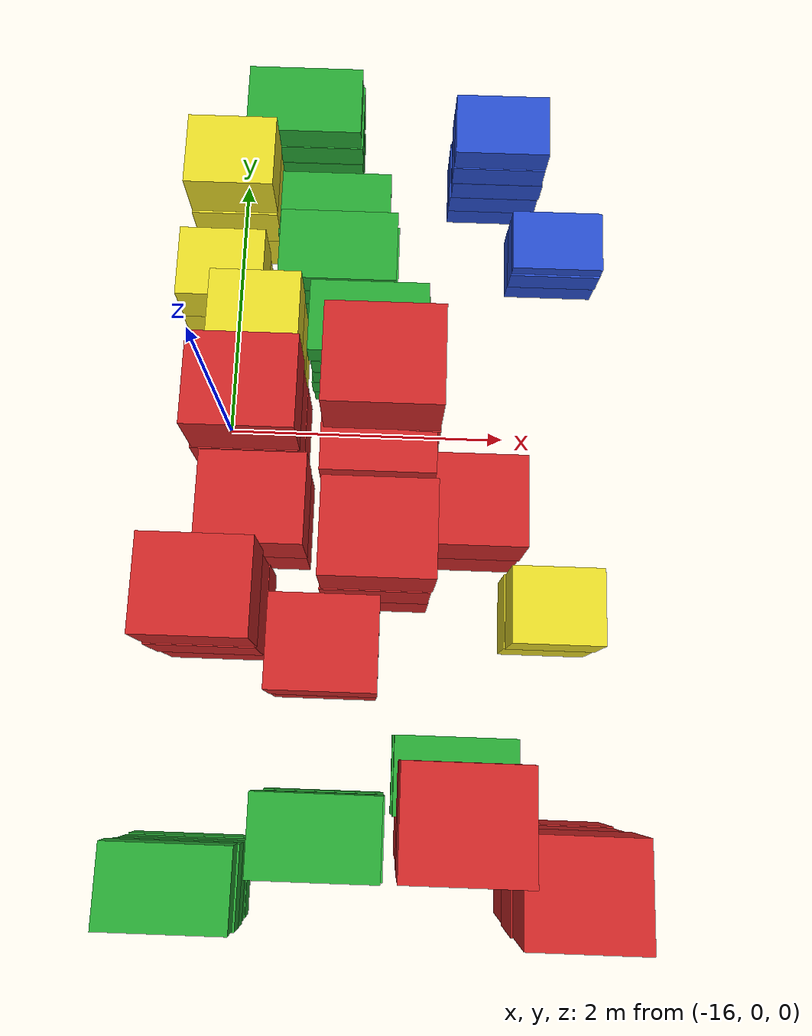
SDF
<sdf version="1.6">
 <world name="default">
  <include><uri>model://sun</uri></include>
  <model name="baggage_D_x5">
   <model name="baggage_D_0">
    <static>1</static>
    <link name="link">
     <collision name="collision"><geometry><box><size>0.8 0.5 0.2</size></box></geometry></collision>
     <visual name="visual">
      <geometry><box><size>0.8 0.5 0.2</size></box></geometry>
      <material>
       <script><uri>file://media/materials/scripts/gazebo.material</uri><name>Gazebo/Green</name></script>
      </material>
     </visual>
    </link>
    <pose>0 0 0.1 0 -0 0</pose>
   </model>
   <model name="baggage_D_1">
    <static>1</static>
    <link name="link">
     <collision name="collision"><geometry><box><size>0.8 0.5 0.2</size></box></geometry></collision>
     <visual name="visual">
      <geometry><box><size>0.8 0.5 0.2</size></box></geometry>
      <material>
       <script><uri>file://media/materials/scripts/gazebo.material</uri><name>Gazebo/Green</name></script>
      </material>
     </visual>
    </link>
    <pose>-0.0065 -0.0092 0.3 0 -0 0</pose>
   </model>
   <model name="baggage_D_2">
    <static>1</static>
    <link name="link">
     <collision name="collision"><geometry><box><size>0.8 0.5 0.2</size></box></geometry></collision>
     <visual name="visual">
      <geometry><box><size>0.8 0.5 0.2</size></box></geometry>
      <material>
       <script><uri>file://media/materials/scripts/gazebo.material</uri><name>Gazebo/Green</name></script>
      </material>
     </visual>
    </link>
    <pose>0.005 -0.0052 0.5 0 -0 0</pose>
   </model>
   <model name="baggage_D_3">
    <static>1</static>
    <link name="link">
     <collision name="collision"><geometry><box><size>0.8 0.5 0.2</size></box></geometry></collision>
     <visual name="visual">
      <geometry><box><size>0.8 0.5 0.2</size></box></geometry>
      <material>
       <script><uri>file://media/materials/scripts/gazebo.material</uri><name>Gazebo/Green</name></script>
      </material>
     </visual>
    </link>
    <pose>0.0074 0.0002 0.7 0 -0 0</pose>
   </model>
   <model name="baggage_D_4">
    <static>1</static>
    <link name="link">
     <collision name="collision"><geometry><box><size>0.8 0.5 0.2</size></box></geometry></collision>
     <visual name="visual">
      <geometry><box><size>0.8 0.5 0.2</size></box></geometry>
      <material>
       <script><uri>file://media/materials/scripts/gazebo.material</uri><name>Gazebo/Green</name></script>
      </material>
     </visual>
    </link>
    <pose>-0.006 0.0081 0.9 0 -0 0</pose>
   </model>
   <pose>-16.0603 -3.09138 0 0 -0 0</pose>
  </model>
  <model name="baggage_D_x5_0">
   <model name="baggage_D_0">
    <static>1</static>
    <link name="link">
     <collision name="collision"><geometry><box><size>0.8 0.5 0.2</size></box></geometry></collision>
     <visual name="visual">
      <geometry><box><size>0.8 0.5 0.2</size></box></geometry>
      <material>
       <script><uri>file://media/materials/scripts/gazebo.material</uri><name>Gazebo/Green</name></script>
      </material>
     </visual>
    </link>
    <pose>0 0 0.1 0 -0 0</pose>
   </model>
   <model name="baggage_D_1">
    <static>1</static>
    <link name="link">
     <collision name="collision"><geometry><box><size>0.8 0.5 0.2</size></box></geometry></collision>
     <visual name="visual">
      <geometry><box><size>0.8 0.5 0.2</size></box></geometry>
      <material>
       <script><uri>file://media/materials/scripts/gazebo.material</uri><name>Gazebo/Green</name></script>
      </material>
     </visual>
    </link>
    <pose>-0.0065 -0.0092 0.3 0 -0 0</pose>
   </model>
   <model name="baggage_D_2">
    <static>1</static>
    <link name="link">
     <collision name="collision"><geometry><box><size>0.8 0.5 0.2</size></box></geometry></collision>
     <visual name="visual">
      <geometry><box><size>0.8 0.5 0.2</size></box></geometry>
      <material>
       <script><uri>file://media/materials/scripts/gazebo.material</uri><name>Gazebo/Green</name></script>
      </material>
     </visual>
    </link>
    <pose>0.005 -0.0052 0.5 0 -0 0</pose>
   </model>
   <model name="baggage_D_3">
    <static>1</static>
    <link name="link">
     <collision name="collision"><geometry><box><size>0.8 0.5 0.2</size></box></geometry></collision>
     <visual name="visual">
      <geometry><box><size>0.8 0.5 0.2</size></box></geometry>
      <material>
       <script><uri>file://media/materials/scripts/gazebo.material</uri><name>Gazebo/Green</name></script>
      </material>
     </visual>
    </link>
    <pose>0.0074 0.0002 0.7 0 -0 0</pose>
   </model>
   <model name="baggage_D_4">
    <static>1</static>
    <link name="link">
     <collision name="collision"><geometry><box><size>0.8 0.5 0.2</size></box></geometry></collision>
     <visual name="visual">
      <geometry><box><size>0.8 0.5 0.2</size></box></geometry>
      <material>
       <script><uri>file://media/materials/scripts/gazebo.material</uri><name>Gazebo/Green</name></script>
      </material>
     </visual>
    </link>
    <pose>-0.006 0.0081 0.9 0 -0 0</pose>
   </model>
   <pose>-15.1916 -2.77971 0 0 -0 0</pose>
  </model>
  <model name="baggage_D_x3">
   <model name="baggage_D_0">
    <static>1</static>
    <link name="link">
     <collision name="collision"><geometry><box><size>0.8 0.5 0.2</size></box></geometry></collision>
     <visual name="visual">
      <geometry><box><size>0.8 0.5 0.2</size></box></geometry>
      <material>
       <script><uri>file://media/materials/scripts/gazebo.material</uri><name>Gazebo/Green</name></script>
      </material>
     </visual>
    </link>
    <pose>0 0 0.1 0 -0 0</pose>
   </model>
   <model name="baggage_D_1">
    <static>1</static>
    <link name="link">
     <collision name="collision"><geometry><box><size>0.8 0.5 0.2</size></box></geometry></collision>
     <visual name="visual">
      <geometry><box><size>0.8 0.5 0.2</size></box></geometry>
      <material>
       <script><uri>file://media/materials/scripts/gazebo.material</uri><name>Gazebo/Green</name></script>
      </material>
     </visual>
    </link>
    <pose>-0.0056 0.0083 0.3 0 -0 0</pose>
   </model>
   <model name="baggage_D_2">
    <static>1</static>
    <link name="link">
     <collision name="collision"><geometry><box><size>0.8 0.5 0.2</size></box></geometry></collision>
     <visual name="visual">
      <geometry><box><size>0.8 0.5 0.2</size></box></geometry>
      <material>
       <script><uri>file://media/materials/scripts/gazebo.material</uri><name>Gazebo/Green</name></script>
      </material>
     </visual>
    </link>
    <pose>0.0053 0.0057 0.5 0 -0 0</pose>
   </model>
   <pose>-14.3395 -2.41254 0 0 -0 0</pose>
  </model>
  <model name="baggage_A_x4">
   <model name="baggage_A_0">
    <static>1</static>
    <link name="link">
     <collision name="collision"><geometry><box><size>0.7 0.6 0.5</size></box></geometry></collision>
     <visual name="visual">
      <geometry><box><size>0.7 0.6 0.5</size></box></geometry>
      <material>
       <script><uri>file://media/materials/scripts/gazebo.material</uri><name>Gazebo/Red</name></script>
      </material>
     </visual>
    </link>
    <pose>0 0 0.25 0 -0 0</pose>
   </model>
   <model name="baggage_A_1">
    <static>1</static>
    <link name="link">
     <collision name="collision"><geometry><box><size>0.7 0.6 0.5</size></box></geometry></collision>
     <visual name="visual">
      <geometry><box><size>0.7 0.6 0.5</size></box></geometry>
      <material>
       <script><uri>file://media/materials/scripts/gazebo.material</uri><name>Gazebo/Red</name></script>
      </material>
     </visual>
    </link>
    <pose>0.0053 0.0033 0.75 0 -0 0</pose>
   </model>
   <model name="baggage_A_2">
    <static>1</static>
    <link name="link">
     <collision name="collision"><geometry><box><size>0.7 0.6 0.5</size></box></geometry></collision>
     <visual name="visual">
      <geometry><box><size>0.7 0.6 0.5</size></box></geometry>
      <material>
       <script><uri>file://media/materials/scripts/gazebo.material</uri><name>Gazebo/Red</name></script>
      </material>
     </visual>
    </link>
    <pose>-0.0056 -0.0003 1.25 0 -0 0</pose>
   </model>
   <model name="baggage_A_3">
    <static>1</static>
    <link name="link">
     <collision name="collision"><geometry><box><size>0.7 0.6 0.5</size></box></geometry></collision>
     <visual name="visual">
      <geometry><box><size>0.7 0.6 0.5</size></box></geometry>
      <material>
       <script><uri>file://media/materials/scripts/gazebo.material</uri><name>Gazebo/Red</name></script>
      </material>
     </visual>
    </link>
    <pose>-0.0098 0.0065 1.75 0 -0 0</pose>
   </model>
   <pose>-14.3613 -2.61485 0 0 -0 0</pose>
  </model>
  <model name="baggage_A_x3">
   <model name="baggage_A_0">
    <static>1</static>
    <link name="link">
     <collision name="collision"><geometry><box><size>0.7 0.6 0.5</size></box></geometry></collision>
     <visual name="visual">
      <geometry><box><size>0.7 0.6 0.5</size></box></geometry>
      <material>
       <script><uri>file://media/materials/scripts/gazebo.material</uri><name>Gazebo/Red</name></script>
      </material>
     </visual>
    </link>
    <pose>0 0 0.25 0 -0 0</pose>
   </model>
   <model name="baggage_A_1">
    <static>1</static>
    <link name="link">
     <collision name="collision"><geometry><box><size>0.7 0.6 0.5</size></box></geometry></collision>
     <visual name="visual">
      <geometry><box><size>0.7 0.6 0.5</size></box></geometry>
      <material>
       <script><uri>file://media/materials/scripts/gazebo.material</uri><name>Gazebo/Red</name></script>
      </material>
     </visual>
    </link>
    <pose>-0.006 -0.0077 0.75 0 -0 0</pose>
   </model>
   <model name="baggage_A_2">
    <static>1</static>
    <link name="link">
     <collision name="collision"><geometry><box><size>0.7 0.6 0.5</size></box></geometry></collision>
     <visual name="visual">
      <geometry><box><size>0.7 0.6 0.5</size></box></geometry>
      <material>
       <script><uri>file://media/materials/scripts/gazebo.material</uri><name>Gazebo/Red</name></script>
      </material>
     </visual>
    </link>
    <pose>0.0045 0.0005 1.25 0 -0 0</pose>
   </model>
   <pose>-13.6814 -2.97255 0 0 -0 0</pose>
  </model>
  <model name="baggage_A_x3_1">
   <model name="baggage_A_0">
    <static>1</static>
    <link name="link">
     <collision name="collision"><geometry><box><size>0.7 0.6 0.5</size></box></geometry></collision>
     <visual name="visual">
      <geometry><box><size>0.7 0.6 0.5</size></box></geometry>
      <material>
       <script><uri>file://media/materials/scripts/gazebo.material</uri><name>Gazebo/Red</name></script>
      </material>
     </visual>
    </link>
    <pose>0 0 0.25 0 -0 0</pose>
   </model>
   <model name="baggage_A_1">
    <static>1</static>
    <link name="link">
     <collision name="collision"><geometry><box><size>0.7 0.6 0.5</size></box></geometry></collision>
     <visual name="visual">
      <geometry><box><size>0.7 0.6 0.5</size></box></geometry>
      <material>
       <script><uri>file://media/materials/scripts/gazebo.material</uri><name>Gazebo/Red</name></script>
      </material>
     </visual>
    </link>
    <pose>-0.006 -0.0077 0.75 0 -0 0</pose>
   </model>
   <model name="baggage_A_2">
    <static>1</static>
    <link name="link">
     <collision name="collision"><geometry><box><size>0.7 0.6 0.5</size></box></geometry></collision>
     <visual name="visual">
      <geometry><box><size>0.7 0.6 0.5</size></box></geometry>
      <material>
       <script><uri>file://media/materials/scripts/gazebo.material</uri><name>Gazebo/Red</name></script>
      </material>
     </visual>
    </link>
    <pose>0.0045 0.0005 1.25 0 -0 0</pose>
   </model>
   <pose>-15.9557 -1.37192 0 0 -0 0</pose>
  </model>
  <model name="baggage_A_x2">
   <model name="baggage_A_0">
    <static>1</static>
    <link name="link">
     <collision name="collision"><geometry><box><size>0.7 0.6 0.5</size></box></geometry></collision>
     <visual name="visual">
      <geometry><box><size>0.7 0.6 0.5</size></box></geometry>
      <material>
       <script><uri>file://media/materials/scripts/gazebo.material</uri><name>Gazebo/Red</name></script>
      </material>
     </visual>
    </link>
    <pose>0 0 0.25 0 -0 0</pose>
   </model>
   <model name="baggage_A_1">
    <static>1</static>
    <link name="link">
     <collision name="collision"><geometry><box><size>0.7 0.6 0.5</size></box></geometry></collision>
     <visual name="visual">
      <geometry><box><size>0.7 0.6 0.5</size></box></geometry>
      <material>
       <script><uri>file://media/materials/scripts/gazebo.material</uri><name>Gazebo/Red</name></script>
      </material>
     </visual>
    </link>
    <pose>0.0063 -0.0062 0.75 0 -0 0</pose>
   </model>
   <pose>-15.7141 -0.71732 0 0 -0 0</pose>
  </model>
  <model name="baggage_A_x3_2">
   <model name="baggage_A_0">
    <static>1</static>
    <link name="link">
     <collision name="collision"><geometry><box><size>0.7 0.6 0.5</size></box></geometry></collision>
     <visual name="visual">
      <geometry><box><size>0.7 0.6 0.5</size></box></geometry>
      <material>
       <script><uri>file://media/materials/scripts/gazebo.material</uri><name>Gazebo/Red</name></script>
      </material>
     </visual>
    </link>
    <pose>0 0 0.25 0 -0 0</pose>
   </model>
   <model name="baggage_A_1">
    <static>1</static>
    <link name="link">
     <collision name="collision"><geometry><box><size>0.7 0.6 0.5</size></box></geometry></collision>
     <visual name="visual">
      <geometry><box><size>0.7 0.6 0.5</size></box></geometry>
      <material>
       <script><uri>file://media/materials/scripts/gazebo.material</uri><name>Gazebo/Red</name></script>
      </material>
     </visual>
    </link>
    <pose>-0.006 -0.0077 0.75 0 -0 0</pose>
   </model>
   <model name="baggage_A_2">
    <static>1</static>
    <link name="link">
     <collision name="collision"><geometry><box><size>0.7 0.6 0.5</size></box></geometry></collision>
     <visual name="visual">
      <geometry><box><size>0.7 0.6 0.5</size></box></geometry>
      <material>
       <script><uri>file://media/materials/scripts/gazebo.material</uri><name>Gazebo/Red</name></script>
      </material>
     </visual>
    </link>
    <pose>0.0045 0.0005 1.25 0 -0 0</pose>
   </model>
   <pose>-15.7621 -0.111141 0 0 -0 0</pose>
  </model>
  <model name="baggage_A_x3_3">
   <model name="baggage_A_0">
    <static>1</static>
    <link name="link">
     <collision name="collision"><geometry><box><size>0.7 0.6 0.5</size></box></geometry></collision>
     <visual name="visual">
      <geometry><box><size>0.7 0.6 0.5</size></box></geometry>
      <material>
       <script><uri>file://media/materials/scripts/gazebo.material</uri><name>Gazebo/Red</name></script>
      </material>
     </visual>
    </link>
    <pose>0 0 0.25 0 -0 0</pose>
   </model>
   <model name="baggage_A_1">
    <static>1</static>
    <link name="link">
     <collision name="collision"><geometry><box><size>0.7 0.6 0.5</size></box></geometry></collision>
     <visual name="visual">
      <geometry><box><size>0.7 0.6 0.5</size></box></geometry>
      <material>
       <script><uri>file://media/materials/scripts/gazebo.material</uri><name>Gazebo/Red</name></script>
      </material>
     </visual>
    </link>
    <pose>-0.006 -0.0077 0.75 0 -0 0</pose>
   </model>
   <model name="baggage_A_2">
    <static>1</static>
    <link name="link">
     <collision name="collision"><geometry><box><size>0.7 0.6 0.5</size></box></geometry></collision>
     <visual name="visual">
      <geometry><box><size>0.7 0.6 0.5</size></box></geometry>
      <material>
       <script><uri>file://media/materials/scripts/gazebo.material</uri><name>Gazebo/Red</name></script>
      </material>
     </visual>
    </link>
    <pose>0.0045 0.0005 1.25 0 -0 0</pose>
   </model>
   <pose>-14.902 -0.36223 0 0 -0 0</pose>
  </model>
  <model name="baggage_A_x3_4">
   <model name="baggage_A_0">
    <static>1</static>
    <link name="link">
     <collision name="collision"><geometry><box><size>0.7 0.6 0.5</size></box></geometry></collision>
     <visual name="visual">
      <geometry><box><size>0.7 0.6 0.5</size></box></geometry>
      <material>
       <script><uri>file://media/materials/scripts/gazebo.material</uri><name>Gazebo/Red</name></script>
      </material>
     </visual>
    </link>
    <pose>0 0 0.25 0 -0 0</pose>
   </model>
   <model name="baggage_A_1">
    <static>1</static>
    <link name="link">
     <collision name="collision"><geometry><box><size>0.7 0.6 0.5</size></box></geometry></collision>
     <visual name="visual">
      <geometry><box><size>0.7 0.6 0.5</size></box></geometry>
      <material>
       <script><uri>file://media/materials/scripts/gazebo.material</uri><name>Gazebo/Red</name></script>
      </material>
     </visual>
    </link>
    <pose>-0.006 -0.0077 0.75 0 -0 0</pose>
   </model>
   <model name="baggage_A_2">
    <static>1</static>
    <link name="link">
     <collision name="collision"><geometry><box><size>0.7 0.6 0.5</size></box></geometry></collision>
     <visual name="visual">
      <geometry><box><size>0.7 0.6 0.5</size></box></geometry>
      <material>
       <script><uri>file://media/materials/scripts/gazebo.material</uri><name>Gazebo/Red</name></script>
      </material>
     </visual>
    </link>
    <pose>0.0045 0.0005 1.25 0 -0 0</pose>
   </model>
   <pose>-14.8854 -0.995082 0 0 -0 0</pose>
  </model>
  <model name="baggage_A_x2_0">
   <model name="baggage_A_0">
    <static>1</static>
    <link name="link">
     <collision name="collision"><geometry><box><size>0.7 0.6 0.5</size></box></geometry></collision>
     <visual name="visual">
      <geometry><box><size>0.7 0.6 0.5</size></box></geometry>
      <material>
       <script><uri>file://media/materials/scripts/gazebo.material</uri><name>Gazebo/Red</name></script>
      </material>
     </visual>
    </link>
    <pose>0 0 0.25 0 -0 0</pose>
   </model>
   <model name="baggage_A_1">
    <static>1</static>
    <link name="link">
     <collision name="collision"><geometry><box><size>0.7 0.6 0.5</size></box></geometry></collision>
     <visual name="visual">
      <geometry><box><size>0.7 0.6 0.5</size></box></geometry>
      <material>
       <script><uri>file://media/materials/scripts/gazebo.material</uri><name>Gazebo/Red</name></script>
      </material>
     </visual>
    </link>
    <pose>0.0063 -0.0062 0.75 0 -0 0</pose>
   </model>
   <pose>-15.2121 -1.62004 0 0 -0 0</pose>
  </model>
  <model name="baggage_A_x4_0">
   <model name="baggage_A_0">
    <static>1</static>
    <link name="link">
     <collision name="collision"><geometry><box><size>0.7 0.6 0.5</size></box></geometry></collision>
     <visual name="visual">
      <geometry><box><size>0.7 0.6 0.5</size></box></geometry>
      <material>
       <script><uri>file://media/materials/scripts/gazebo.material</uri><name>Gazebo/Red</name></script>
      </material>
     </visual>
    </link>
    <pose>0 0 0.25 0 -0 0</pose>
   </model>
   <model name="baggage_A_1">
    <static>1</static>
    <link name="link">
     <collision name="collision"><geometry><box><size>0.7 0.6 0.5</size></box></geometry></collision>
     <visual name="visual">
      <geometry><box><size>0.7 0.6 0.5</size></box></geometry>
      <material>
       <script><uri>file://media/materials/scripts/gazebo.material</uri><name>Gazebo/Red</name></script>
      </material>
     </visual>
    </link>
    <pose>0.0053 0.0033 0.75 0 -0 0</pose>
   </model>
   <model name="baggage_A_2">
    <static>1</static>
    <link name="link">
     <collision name="collision"><geometry><box><size>0.7 0.6 0.5</size></box></geometry></collision>
     <visual name="visual">
      <geometry><box><size>0.7 0.6 0.5</size></box></geometry>
      <material>
       <script><uri>file://media/materials/scripts/gazebo.material</uri><name>Gazebo/Red</name></script>
      </material>
     </visual>
    </link>
    <pose>-0.0056 -0.0003 1.25 0 -0 0</pose>
   </model>
   <model name="baggage_A_3">
    <static>1</static>
    <link name="link">
     <collision name="collision"><geometry><box><size>0.7 0.6 0.5</size></box></geometry></collision>
     <visual name="visual">
      <geometry><box><size>0.7 0.6 0.5</size></box></geometry>
      <material>
       <script><uri>file://media/materials/scripts/gazebo.material</uri><name>Gazebo/Red</name></script>
      </material>
     </visual>
    </link>
    <pose>-0.0098 0.0065 1.75 0 -0 0</pose>
   </model>
   <pose>-14.8718 -0.108549 0 0 -0 0</pose>
  </model>
  <model name="baggage_A_x2_1">
   <model name="baggage_A_0">
    <static>1</static>
    <link name="link">
     <collision name="collision"><geometry><box><size>0.7 0.6 0.5</size></box></geometry></collision>
     <visual name="visual">
      <geometry><box><size>0.7 0.6 0.5</size></box></geometry>
      <material>
       <script><uri>file://media/materials/scripts/gazebo.material</uri><name>Gazebo/Red</name></script>
      </material>
     </visual>
    </link>
    <pose>0 0 0.25 0 -0 0</pose>
   </model>
   <model name="baggage_A_1">
    <static>1</static>
    <link name="link">
     <collision name="collision"><geometry><box><size>0.7 0.6 0.5</size></box></geometry></collision>
     <visual name="visual">
      <geometry><box><size>0.7 0.6 0.5</size></box></geometry>
      <material>
       <script><uri>file://media/materials/scripts/gazebo.material</uri><name>Gazebo/Red</name></script>
      </material>
     </visual>
    </link>
    <pose>0.0063 -0.0062 0.75 0 -0 0</pose>
   </model>
   <pose>-14.2882 -0.683416 0 0 -0 0</pose>
  </model>
  <model name="baggage_C_x2_0">
   <model name="baggage_C_0">
    <static>1</static>
    <link name="link">
     <collision name="collision"><geometry><box><size>0.6 0.5 0.4</size></box></geometry></collision>
     <visual name="visual">
      <geometry><box><size>0.6 0.5 0.4</size></box></geometry>
      <material>
       <script><uri>file://media/materials/scripts/gazebo.material</uri><name>Gazebo/Yellow</name></script>
      </material>
     </visual>
    </link>
    <pose>0 0 0.2 0 -0 0</pose>
   </model>
   <model name="baggage_C_1">
    <static>1</static>
    <link name="link">
     <collision name="collision"><geometry><box><size>0.6 0.5 0.4</size></box></geometry></collision>
     <visual name="visual">
      <geometry><box><size>0.6 0.5 0.4</size></box></geometry>
      <material>
       <script><uri>file://media/materials/scripts/gazebo.material</uri><name>Gazebo/Yellow</name></script>
      </material>
     </visual>
    </link>
    <pose>0.0093 -0.002 0.6 0 -0 0</pose>
   </model>
   <pose>-13.721 -1.31855 0 0 -0 0</pose>
  </model>
  <model name="baggage_C_x3_1">
   <model name="baggage_C_0">
    <static>1</static>
    <link name="link">
     <collision name="collision"><geometry><box><size>0.6 0.5 0.4</size></box></geometry></collision>
     <visual name="visual">
      <geometry><box><size>0.6 0.5 0.4</size></box></geometry>
      <material>
       <script><uri>file://media/materials/scripts/gazebo.material</uri><name>Gazebo/Yellow</name></script>
      </material>
     </visual>
    </link>
    <pose>0 0 0.2 0 -0 0</pose>
   </model>
   <model name="baggage_C_1">
    <static>1</static>
    <link name="link">
     <collision name="collision"><geometry><box><size>0.6 0.5 0.4</size></box></geometry></collision>
     <visual name="visual">
      <geometry><box><size>0.6 0.5 0.4</size></box></geometry>
      <material>
       <script><uri>file://media/materials/scripts/gazebo.material</uri><name>Gazebo/Yellow</name></script>
      </material>
     </visual>
    </link>
    <pose>0.0062 -0.0069 0.6 0 -0 0</pose>
   </model>
   <model name="baggage_C_2">
    <static>1</static>
    <link name="link">
     <collision name="collision"><geometry><box><size>0.6 0.5 0.4</size></box></geometry></collision>
     <visual name="visual">
      <geometry><box><size>0.6 0.5 0.4</size></box></geometry>
      <material>
       <script><uri>file://media/materials/scripts/gazebo.material</uri><name>Gazebo/Yellow</name></script>
      </material>
     </visual>
    </link>
    <pose>0.0089 0.0083 1 0 -0 0</pose>
   </model>
   <pose>-15.7532 0.485614 0 0 -0 0</pose>
  </model>
  <model name="baggage_D_x5_1">
   <model name="baggage_D_0">
    <static>1</static>
    <link name="link">
     <collision name="collision"><geometry><box><size>0.8 0.5 0.2</size></box></geometry></collision>
     <visual name="visual">
      <geometry><box><size>0.8 0.5 0.2</size></box></geometry>
      <material>
       <script><uri>file://media/materials/scripts/gazebo.material</uri><name>Gazebo/Green</name></script>
      </material>
     </visual>
    </link>
    <pose>0 0 0.1 0 -0 0</pose>
   </model>
   <model name="baggage_D_1">
    <static>1</static>
    <link name="link">
     <collision name="collision"><geometry><box><size>0.8 0.5 0.2</size></box></geometry></collision>
     <visual name="visual">
      <geometry><box><size>0.8 0.5 0.2</size></box></geometry>
      <material>
       <script><uri>file://media/materials/scripts/gazebo.material</uri><name>Gazebo/Green</name></script>
      </material>
     </visual>
    </link>
    <pose>-0.0065 -0.0092 0.3 0 -0 0</pose>
   </model>
   <model name="baggage_D_2">
    <static>1</static>
    <link name="link">
     <collision name="collision"><geometry><box><size>0.8 0.5 0.2</size></box></geometry></collision>
     <visual name="visual">
      <geometry><box><size>0.8 0.5 0.2</size></box></geometry>
      <material>
       <script><uri>file://media/materials/scripts/gazebo.material</uri><name>Gazebo/Green</name></script>
      </material>
     </visual>
    </link>
    <pose>0.005 -0.0052 0.5 0 -0 0</pose>
   </model>
   <model name="baggage_D_3">
    <static>1</static>
    <link name="link">
     <collision name="collision"><geometry><box><size>0.8 0.5 0.2</size></box></geometry></collision>
     <visual name="visual">
      <geometry><box><size>0.8 0.5 0.2</size></box></geometry>
      <material>
       <script><uri>file://media/materials/scripts/gazebo.material</uri><name>Gazebo/Green</name></script>
      </material>
     </visual>
    </link>
    <pose>0.0074 0.0002 0.7 0 -0 0</pose>
   </model>
   <model name="baggage_D_4">
    <static>1</static>
    <link name="link">
     <collision name="collision"><geometry><box><size>0.8 0.5 0.2</size></box></geometry></collision>
     <visual name="visual">
      <geometry><box><size>0.8 0.5 0.2</size></box></geometry>
      <material>
       <script><uri>file://media/materials/scripts/gazebo.material</uri><name>Gazebo/Green</name></script>
      </material>
     </visual>
    </link>
    <pose>-0.006 0.0081 0.9 0 -0 0</pose>
   </model>
   <pose>-14.9923 0.523276 0 0 -0 0</pose>
  </model>
  <model name="baggage_D_x5_2">
   <model name="baggage_D_0">
    <static>1</static>
    <link name="link">
     <collision name="collision"><geometry><box><size>0.8 0.5 0.2</size></box></geometry></collision>
     <visual name="visual">
      <geometry><box><size>0.8 0.5 0.2</size></box></geometry>
      <material>
       <script><uri>file://media/materials/scripts/gazebo.material</uri><name>Gazebo/Green</name></script>
      </material>
     </visual>
    </link>
    <pose>0 0 0.1 0 -0 0</pose>
   </model>
   <model name="baggage_D_1">
    <static>1</static>
    <link name="link">
     <collision name="collision"><geometry><box><size>0.8 0.5 0.2</size></box></geometry></collision>
     <visual name="visual">
      <geometry><box><size>0.8 0.5 0.2</size></box></geometry>
      <material>
       <script><uri>file://media/materials/scripts/gazebo.material</uri><name>Gazebo/Green</name></script>
      </material>
     </visual>
    </link>
    <pose>-0.0065 -0.0092 0.3 0 -0 0</pose>
   </model>
   <model name="baggage_D_2">
    <static>1</static>
    <link name="link">
     <collision name="collision"><geometry><box><size>0.8 0.5 0.2</size></box></geometry></collision>
     <visual name="visual">
      <geometry><box><size>0.8 0.5 0.2</size></box></geometry>
      <material>
       <script><uri>file://media/materials/scripts/gazebo.material</uri><name>Gazebo/Green</name></script>
      </material>
     </visual>
    </link>
    <pose>0.005 -0.0052 0.5 0 -0 0</pose>
   </model>
   <model name="baggage_D_3">
    <static>1</static>
    <link name="link">
     <collision name="collision"><geometry><box><size>0.8 0.5 0.2</size></box></geometry></collision>
     <visual name="visual">
      <geometry><box><size>0.8 0.5 0.2</size></box></geometry>
      <material>
       <script><uri>file://media/materials/scripts/gazebo.material</uri><name>Gazebo/Green</name></script>
      </material>
     </visual>
    </link>
    <pose>0.0074 0.0002 0.7 0 -0 0</pose>
   </model>
   <model name="baggage_D_4">
    <static>1</static>
    <link name="link">
     <collision name="collision"><geometry><box><size>0.8 0.5 0.2</size></box></geometry></collision>
     <visual name="visual">
      <geometry><box><size>0.8 0.5 0.2</size></box></geometry>
      <material>
       <script><uri>file://media/materials/scripts/gazebo.material</uri><name>Gazebo/Green</name></script>
      </material>
     </visual>
    </link>
    <pose>-0.006 0.0081 0.9 0 -0 0</pose>
   </model>
   <pose>-15.2186 1.03486 0 0 -0 0</pose>
  </model>
  <model name="baggage_D_x3_2">
   <model name="baggage_D_0">
    <static>1</static>
    <link name="link">
     <collision name="collision"><geometry><box><size>0.8 0.5 0.2</size></box></geometry></collision>
     <visual name="visual">
      <geometry><box><size>0.8 0.5 0.2</size></box></geometry>
      <material>
       <script><uri>file://media/materials/scripts/gazebo.material</uri><name>Gazebo/Green</name></script>
      </material>
     </visual>
    </link>
    <pose>0 0 0.1 0 -0 0</pose>
   </model>
   <model name="baggage_D_1">
    <static>1</static>
    <link name="link">
     <collision name="collision"><geometry><box><size>0.8 0.5 0.2</size></box></geometry></collision>
     <visual name="visual">
      <geometry><box><size>0.8 0.5 0.2</size></box></geometry>
      <material>
       <script><uri>file://media/materials/scripts/gazebo.material</uri><name>Gazebo/Green</name></script>
      </material>
     </visual>
    </link>
    <pose>-0.0056 0.0083 0.3 0 -0 0</pose>
   </model>
   <model name="baggage_D_2">
    <static>1</static>
    <link name="link">
     <collision name="collision"><geometry><box><size>0.8 0.5 0.2</size></box></geometry></collision>
     <visual name="visual">
      <geometry><box><size>0.8 0.5 0.2</size></box></geometry>
      <material>
       <script><uri>file://media/materials/scripts/gazebo.material</uri><name>Gazebo/Green</name></script>
      </material>
     </visual>
    </link>
    <pose>0.0053 0.0057 0.5 0 -0 0</pose>
   </model>
   <pose>-15.2862 1.55706 0 0 -0 0</pose>
  </model>
  <model name="baggage_C_x2_1">
   <model name="baggage_C_0">
    <static>1</static>
    <link name="link">
     <collision name="collision"><geometry><box><size>0.6 0.5 0.4</size></box></geometry></collision>
     <visual name="visual">
      <geometry><box><size>0.6 0.5 0.4</size></box></geometry>
      <material>
       <script><uri>file://media/materials/scripts/gazebo.material</uri><name>Gazebo/Yellow</name></script>
      </material>
     </visual>
    </link>
    <pose>0 0 0.2 0 -0 0</pose>
   </model>
   <model name="baggage_C_1">
    <static>1</static>
    <link name="link">
     <collision name="collision"><geometry><box><size>0.6 0.5 0.4</size></box></geometry></collision>
     <visual name="visual">
      <geometry><box><size>0.6 0.5 0.4</size></box></geometry>
      <material>
       <script><uri>file://media/materials/scripts/gazebo.material</uri><name>Gazebo/Yellow</name></script>
      </material>
     </visual>
    </link>
    <pose>0.0093 -0.002 0.6 0 -0 0</pose>
   </model>
   <pose>-16.0562 0.989731 0 0 -0 0</pose>
  </model>
  <model name="baggage_C_x3_2">
   <model name="baggage_C_0">
    <static>1</static>
    <link name="link">
     <collision name="collision"><geometry><box><size>0.6 0.5 0.4</size></box></geometry></collision>
     <visual name="visual">
      <geometry><box><size>0.6 0.5 0.4</size></box></geometry>
      <material>
       <script><uri>file://media/materials/scripts/gazebo.material</uri><name>Gazebo/Yellow</name></script>
      </material>
     </visual>
    </link>
    <pose>0 0 0.2 0 -0 0</pose>
   </model>
   <model name="baggage_C_1">
    <static>1</static>
    <link name="link">
     <collision name="collision"><geometry><box><size>0.6 0.5 0.4</size></box></geometry></collision>
     <visual name="visual">
      <geometry><box><size>0.6 0.5 0.4</size></box></geometry>
      <material>
       <script><uri>file://media/materials/scripts/gazebo.material</uri><name>Gazebo/Yellow</name></script>
      </material>
     </visual>
    </link>
    <pose>0.0062 -0.0069 0.6 0 -0 0</pose>
   </model>
   <model name="baggage_C_2">
    <static>1</static>
    <link name="link">
     <collision name="collision"><geometry><box><size>0.6 0.5 0.4</size></box></geometry></collision>
     <visual name="visual">
      <geometry><box><size>0.6 0.5 0.4</size></box></geometry>
      <material>
       <script><uri>file://media/materials/scripts/gazebo.material</uri><name>Gazebo/Yellow</name></script>
      </material>
     </visual>
    </link>
    <pose>0.0089 0.0083 1 0 -0 0</pose>
   </model>
   <pose>-15.9802 1.60915 0 0 -0 0</pose>
  </model>
  <model name="baggage_B_x3_2">
   <model name="baggage_B_0">
    <static>1</static>
    <link name="link">
     <collision name="collision"><geometry><box><size>0.65 0.45 0.2</size></box></geometry></collision>
     <visual name="visual">
      <geometry><box><size>0.65 0.45 0.2</size></box></geometry>
      <material>
       <script><uri>file://media/materials/scripts/gazebo.material</uri><name>Gazebo/Blue</name></script>
      </material>
     </visual>
    </link>
    <pose>0 0 0.1 0 -0 0</pose>
   </model>
   <model name="baggage_B_1">
    <static>1</static>
    <link name="link">
     <collision name="collision"><geometry><box><size>0.65 0.45 0.2</size></box></geometry></collision>
     <visual name="visual">
      <geometry><box><size>0.65 0.45 0.2</size></box></geometry>
      <material>
       <script><uri>file://media/materials/scripts/gazebo.material</uri><name>Gazebo/Blue</name></script>
      </material>
     </visual>
    </link>
    <pose>0.0028 -0.0086 0.3 0 -0 0</pose>
   </model>
   <model name="baggage_B_2">
    <static>1</static>
    <link name="link">
     <collision name="collision"><geometry><box><size>0.65 0.45 0.2</size></box></geometry></collision>
     <visual name="visual">
      <geometry><box><size>0.65 0.45 0.2</size></box></geometry>
      <material>
       <script><uri>file://media/materials/scripts/gazebo.material</uri><name>Gazebo/Blue</name></script>
      </material>
     </visual>
    </link>
    <pose>0.0092 0.006 0.4 0 -0 0</pose>
   </model>
   <pose>-13.6671 1.37486 0 0 -0 0</pose>
  </model>
  <model name="baggage_B_x5_7">
   <model name="baggage_B_0">
    <static>1</static>
    <link name="link">
     <collision name="collision"><geometry><box><size>0.65 0.45 0.2</size></box></geometry></collision>
     <visual name="visual">
      <geometry><box><size>0.65 0.45 0.2</size></box></geometry>
      <material>
       <script><uri>file://media/materials/scripts/gazebo.material</uri><name>Gazebo/Blue</name></script>
      </material>
     </visual>
    </link>
    <pose>0 0 0.1 0 -0 0</pose>
   </model>
   <model name="baggage_B_1">
    <static>1</static>
    <link name="link">
     <collision name="collision"><geometry><box><size>0.65 0.45 0.2</size></box></geometry></collision>
     <visual name="visual">
      <geometry><box><size>0.65 0.45 0.2</size></box></geometry>
      <material>
       <script><uri>file://media/materials/scripts/gazebo.material</uri><name>Gazebo/Blue</name></script>
      </material>
     </visual>
    </link>
    <pose>-0.0014 -0.0091 0.3 0 -0 0</pose>
   </model>
   <model name="baggage_B_2">
    <static>1</static>
    <link name="link">
     <collision name="collision"><geometry><box><size>0.65 0.45 0.2</size></box></geometry></collision>
     <visual name="visual">
      <geometry><box><size>0.65 0.45 0.2</size></box></geometry>
      <material>
       <script><uri>file://media/materials/scripts/gazebo.material</uri><name>Gazebo/Blue</name></script>
      </material>
     </visual>
    </link>
    <pose>0.0076 -0.0066 0.5 0 -0 0</pose>
   </model>
   <model name="baggage_B_3">
    <static>1</static>
    <link name="link">
     <collision name="collision"><geometry><box><size>0.65 0.45 0.2</size></box></geometry></collision>
     <visual name="visual">
      <geometry><box><size>0.65 0.45 0.2</size></box></geometry>
      <material>
       <script><uri>file://media/materials/scripts/gazebo.material</uri><name>Gazebo/Blue</name></script>
      </material>
     </visual>
    </link>
    <pose>0 -0.0032 0.7 0 -0 0</pose>
   </model>
   <model name="baggage_B_4">
    <static>1</static>
    <link name="link">
     <collision name="collision"><geometry><box><size>0.65 0.45 0.2</size></box></geometry></collision>
     <visual name="visual">
      <geometry><box><size>0.65 0.45 0.2</size></box></geometry>
      <material>
       <script><uri>file://media/materials/scripts/gazebo.material</uri><name>Gazebo/Blue</name></script>
      </material>
     </visual>
    </link>
    <pose>0.0023 0.0073 0.9 0 -0 0</pose>
   </model>
   <pose>-14.1184 1.98865 0 0 -0 0</pose>
  </model>
  <model name="baggage_D_x5_4">
   <model name="baggage_D_0">
    <static>1</static>
    <link name="link">
     <collision name="collision"><geometry><box><size>0.8 0.5 0.2</size></box></geometry></collision>
     <visual name="visual">
      <geometry><box><size>0.8 0.5 0.2</size></box></geometry>
      <material>
       <script><uri>file://media/materials/scripts/gazebo.material</uri><name>Gazebo/Green</name></script>
      </material>
     </visual>
    </link>
    <pose>0 0 0.1 0 -0 0</pose>
   </model>
   <model name="baggage_D_1">
    <static>1</static>
    <link name="link">
     <collision name="collision"><geometry><box><size>0.8 0.5 0.2</size></box></geometry></collision>
     <visual name="visual">
      <geometry><box><size>0.8 0.5 0.2</size></box></geometry>
      <material>
       <script><uri>file://media/materials/scripts/gazebo.material</uri><name>Gazebo/Green</name></script>
      </material>
     </visual>
    </link>
    <pose>-0.0065 -0.0092 0.3 0 -0 0</pose>
   </model>
   <model name="baggage_D_2">
    <static>1</static>
    <link name="link">
     <collision name="collision"><geometry><box><size>0.8 0.5 0.2</size></box></geometry></collision>
     <visual name="visual">
      <geometry><box><size>0.8 0.5 0.2</size></box></geometry>
      <material>
       <script><uri>file://media/materials/scripts/gazebo.material</uri><name>Gazebo/Green</name></script>
      </material>
     </visual>
    </link>
    <pose>0.005 -0.0052 0.5 0 -0 0</pose>
   </model>
   <model name="baggage_D_3">
    <static>1</static>
    <link name="link">
     <collision name="collision"><geometry><box><size>0.8 0.5 0.2</size></box></geometry></collision>
     <visual name="visual">
      <geometry><box><size>0.8 0.5 0.2</size></box></geometry>
      <material>
       <script><uri>file://media/materials/scripts/gazebo.material</uri><name>Gazebo/Green</name></script>
      </material>
     </visual>
    </link>
    <pose>0.0074 0.0002 0.7 0 -0 0</pose>
   </model>
   <model name="baggage_D_4">
    <static>1</static>
    <link name="link">
     <collision name="collision"><geometry><box><size>0.8 0.5 0.2</size></box></geometry></collision>
     <visual name="visual">
      <geometry><box><size>0.8 0.5 0.2</size></box></geometry>
      <material>
       <script><uri>file://media/materials/scripts/gazebo.material</uri><name>Gazebo/Green</name></script>
      </material>
     </visual>
    </link>
    <pose>-0.006 0.0081 0.9 0 -0 0</pose>
   </model>
   <pose>-15.5016 2.13917 0 0 -0 0</pose>
  </model>
 </world>
</sdf>
